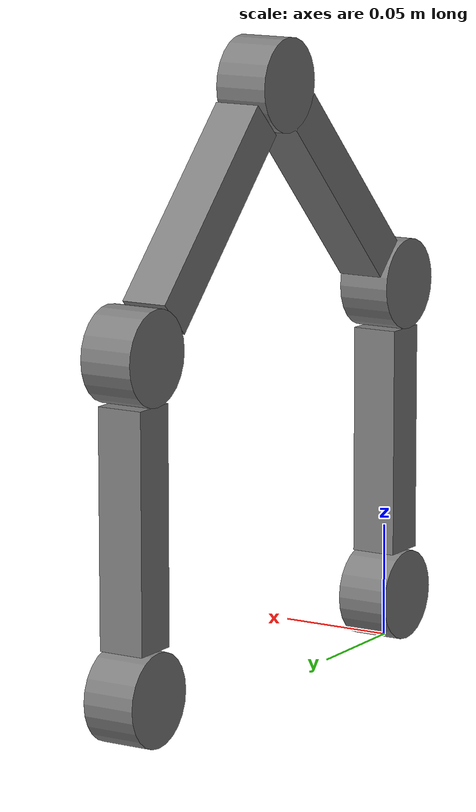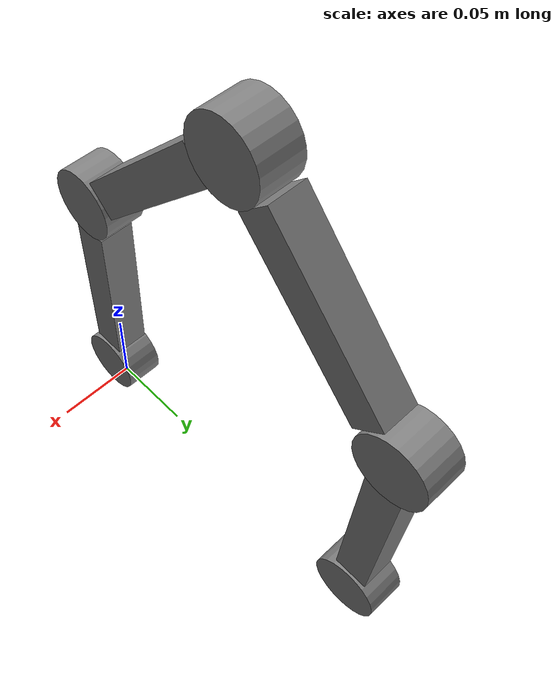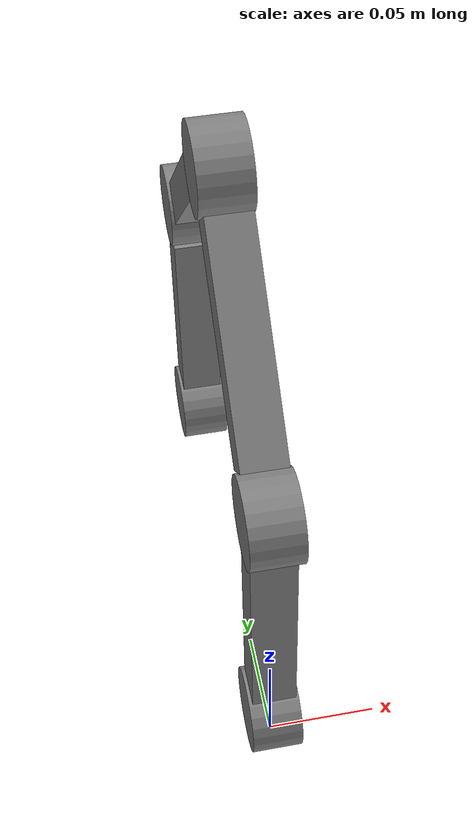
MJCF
<mujoco model="task2">
    <visual>
        <headlight ambient="0.5 0.5 0.5"/>
    </visual>

    <option gravity="0 0 -9.81"/>

    <worldbody>
        <light diffuse=".5 .5 .5" pos="0 0 3" dir="0 0 -1" />

        <!--geom type="plane" pos="-0.5 -0.5 0" size="1 1 0.1" rgba="1 0 1 1"/-->

        <body name="Low_Left" euler="0 0 0" pos="0 0 0.0198">

            <geom type="cylinder" fromto="-0.0115 0 0 0.0115 0 0" size="0.0198" mass="0.065"/>
            <joint name="LL_hinge" type="hinge" axis="1 0 0" pos="0 0 0"/>

            <geom type="box" size="0.01 0.01 0.05" pos="0 0 0.0698"/>

            <body name="Mid_Left" euler="0 0 0" pos="0 0 0.1396">
                <joint name="ML_hinge" type="hinge" axis="1 0 0" pos="0 0 0"/>
                <geom type="cylinder" fromto="-0.0115 0 0 0.0115 0 0" size="0.0198" mass="0.065"/>

                <geom type="box" size="0.01 0.01 0.05" pos="0 0.0499978757 0.0487057741" axisangle="1 0 0 135.75"/>

                <body name="Up_Left" euler="0 0 0" pos="0 0.0999957513 0.0974115482">
                    <geom type="cylinder" fromto="-0.0115 0 0 0.0115 0 0" size="0.0198" mass="0.065"/>
                </body>
            </body>
        </body>

        <body name="Low_Right" euler="0 0 0" pos="0 0.2 0.0198">
            <geom type="cylinder" fromto="-0.0115 0 0 0.0115 0 0" size="0.0198" mass="0.065"/>
            <joint name="LR_hinge" type="hinge" axis="1 0 0" pos="0 0 0"/>

            <geom type="box" size="0.01 0.01 0.05" pos="0 0 0.0698"/>

            <body name="Mid_Right" euler="0 0 0" pos="0 0 0.1396">
                <joint name="MR_hinge" type="hinge" axis="1 0 0" pos="0 0 0"/>
                <geom type="cylinder" fromto="-0.0115 0 0 0.0115 0 0" size="0.0198" mass="0.065"/>

                <geom type="box" size="0.01 0.01 0.05" pos="0 -0.0499978757 0.0487057741" axisangle="1 0 0 44.25"/>
            </body>
        </body>
    </worldbody>

    <equality>
        <connect name="make_what_is_part_whole" active="true" body1="Up_Left" body2="Mid_Right" anchor="0 0 0"/>
    </equality>
</mujoco>
